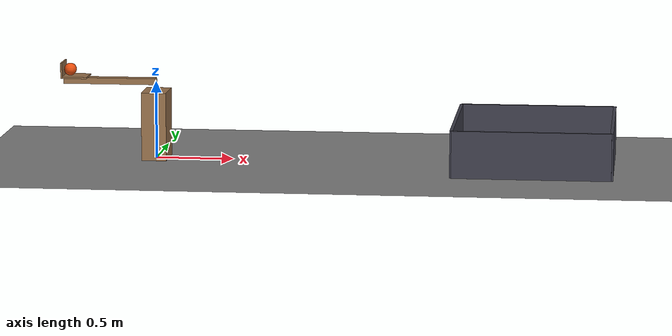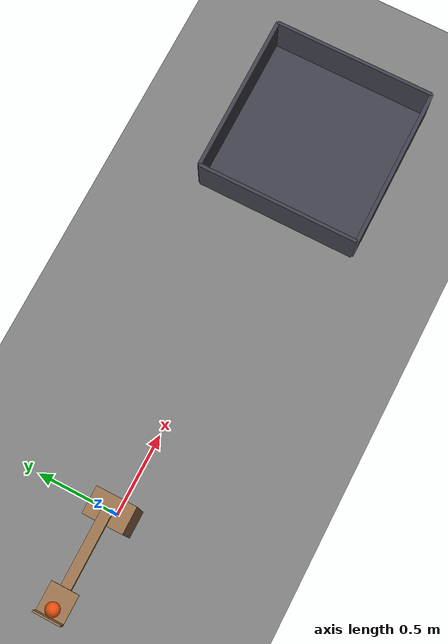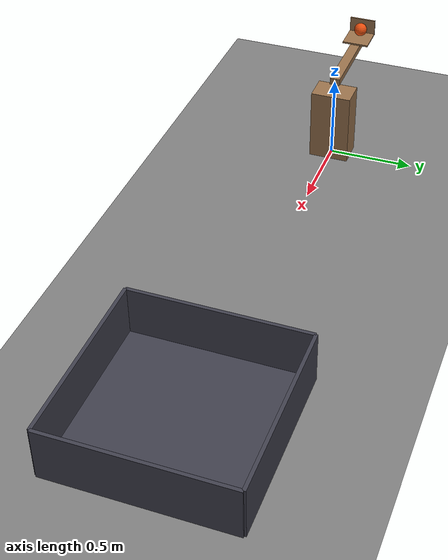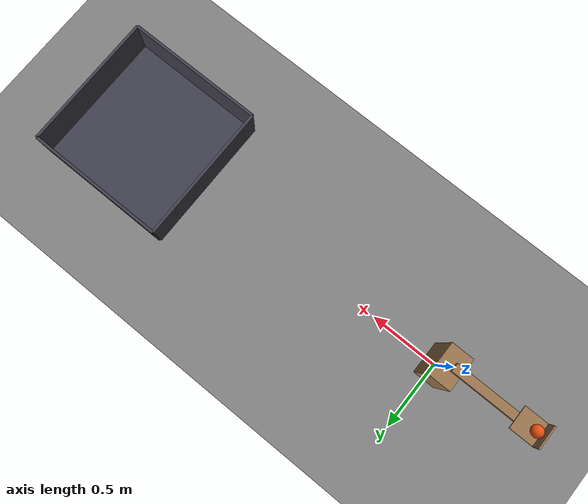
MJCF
<mujoco model="catapult_into_a_bucket">
  <compiler angle="radian"/>
  <option timestep="0.002"/>
  <worldbody>
    <geom name="floor" type="plane" size="8 8 0.1" friction="0.8 0.005 0.002"/>
    <geom name="catapult_stand" type="box" pos="0 0 0.22" size="0.08 0.12 0.22" friction="0.8 0.01 0.004" rgba="0.6 0.45 0.3 1"/>
    <body name="catapult" pos="0 0 0.5">
      <joint name="catapult_hinge" type="hinge" pos="0 0 0" axis="0 1 0" limited="true" range="0 0.785398" stiffness="4.95" springref="1.5708" damping="0.02" armature="0.002"/>
      <geom name="catapult_arm" type="box" pos="-0.3 0 0" size="0.3 0.03 0.02" mass="0.3" friction="0.8 0.01 0.004" rgba="0.6 0.45 0.3 1"/>
      <geom name="catapult_scoop_base" type="box" pos="-0.52 0 0.025" size="0.08 0.08 0.005" mass="0.02" friction="0.8 0.01 0.004" rgba="0.6 0.45 0.3 1"/>
      <geom name="catapult_scoop_back" type="box" pos="-0.605 0 0.07" size="0.005 0.08 0.05" mass="0.01" friction="0.8 0.01 0.004" rgba="0.6 0.45 0.3 1"/>
    </body>
    <body name="ball" pos="-0.559 0 0.57">
      <freejoint/>
      <geom name="ball" type="sphere" pos="0 0 0" size="0.04" mass="0.1" condim="6" friction="0.8 0.01 0.004" solref="0.01 1" rgba="0.9 0.3 0.05 1"/>
    </body>
    <body name="bucket">
      <geom name="bucket_base" type="box" pos="2.441 0 0.01" size="0.5 0.5 0.01" friction="0.8 0.01 0.004" solref="0.01 1" rgba="0.25 0.25 0.3 1"/>
      <geom name="bucket_near_wall" type="box" pos="1.941 0 0.15" size="0.01 0.5 0.15" friction="0.8 0.01 0.004" solref="0.01 1" rgba="0.25 0.25 0.3 1"/>
      <geom name="bucket_far_wall" type="box" pos="2.941 0 0.15" size="0.01 0.5 0.15" friction="0.8 0.01 0.004" solref="0.01 1" rgba="0.25 0.25 0.3 1"/>
      <geom name="bucket_left_wall" type="box" pos="2.441 0.5 0.15" size="0.5 0.01 0.15" friction="0.8 0.01 0.004" solref="0.01 1" rgba="0.25 0.25 0.3 1"/>
      <geom name="bucket_right_wall" type="box" pos="2.441 -0.5 0.15" size="0.5 0.01 0.15" friction="0.8 0.01 0.004" solref="0.01 1" rgba="0.25 0.25 0.3 1"/>
    </body>
  </worldbody>
  <keyframe>
    <key name="start" qpos="0 -0.559 0 0.57 1 0 0 0" qvel="0 0 0 0 0 0 0"/>
  </keyframe>
</mujoco>
